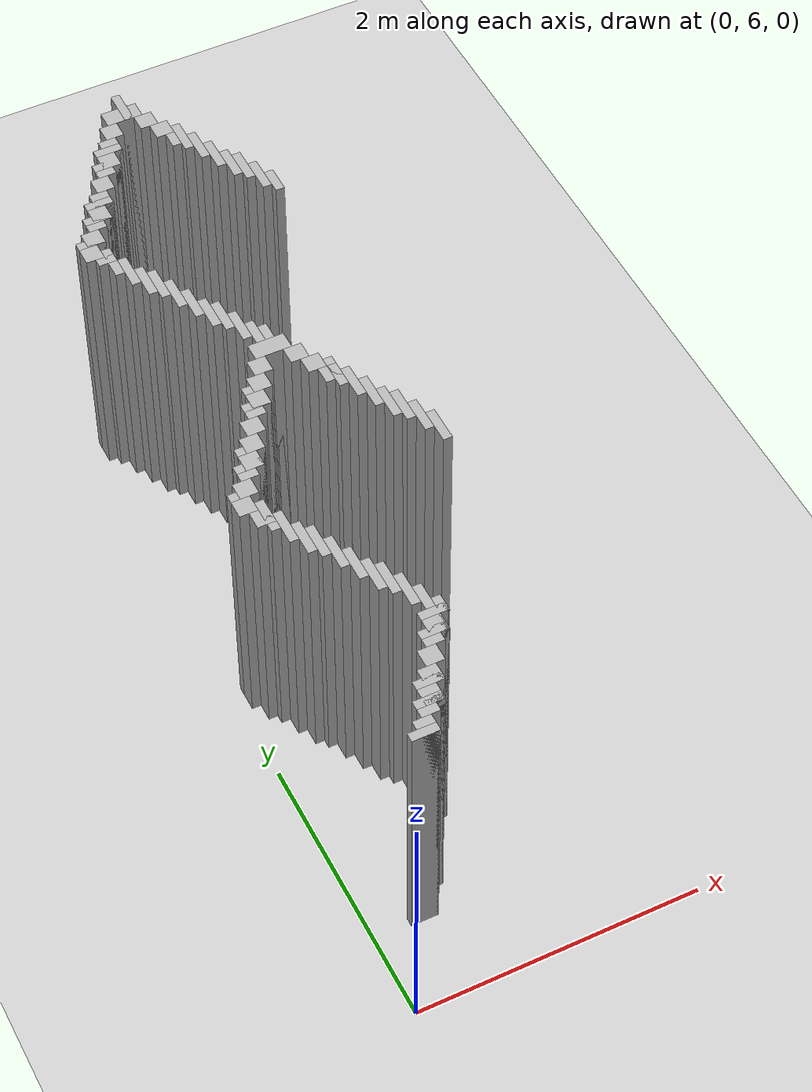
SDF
<sdf version="1.6">
 <world name="slam_world">
  <model name="ground_plane">
   <static>true</static>
   <link name="link">
    <collision name="collision">
     <geometry><plane><normal>0 0 1</normal><size>100 100</size></plane></geometry>
    </collision>
    <visual name="visual">
     <geometry><plane><normal>0 0 1</normal><size>100 100</size></plane></geometry>
     <material>
      <ambient>0.8 0.8 0.8 1</ambient>
      <diffuse>0.8 0.8 0.8 1</diffuse>
      <specular>0.8 0.8 0.8 1</specular>
     </material>
    </visual>
   </link>
  </model>
  <model name="wall_1153">
   <static>true</static>
   <pose>0.8617021276595744 12.25531914893617 1.0 0 0 0</pose>
   <link name="link">
    <collision name="collision">
     <geometry><box><size>0.06382978723404255 0.2553191489361702 2.0</size></box></geometry>
    </collision>
    <visual name="visual">
     <geometry><box><size>0.06382978723404255 0.2553191489361702 2.0</size></box></geometry>
     <material><ambient>0.5 0.5 0.5 1</ambient><diffuse>0.7 0.7 0.7 1</diffuse></material>
    </visual>
   </link>
  </model>
  <model name="wall_1165">
   <static>true</static>
   <pose>0.8297872340425532 12.191489361702127 1.0 0 0 0</pose>
   <link name="link">
    <collision name="collision">
     <geometry><box><size>0.2553191489361702 0.1276595744680851 2.0</size></box></geometry>
    </collision>
    <visual name="visual">
     <geometry><box><size>0.2553191489361702 0.1276595744680851 2.0</size></box></geometry>
     <material><ambient>0.5 0.5 0.5 1</ambient><diffuse>0.7 0.7 0.7 1</diffuse></material>
    </visual>
   </link>
  </model>
  <model name="wall_1178">
   <static>true</static>
   <pose>0.702127659574468 12.063829787234042 1.0 0 0 0</pose>
   <link name="link">
    <collision name="collision">
     <geometry><box><size>0.1276595744680851 0.1276595744680851 2.0</size></box></geometry>
    </collision>
    <visual name="visual">
     <geometry><box><size>0.1276595744680851 0.1276595744680851 2.0</size></box></geometry>
     <material><ambient>0.5 0.5 0.5 1</ambient><diffuse>0.7 0.7 0.7 1</diffuse></material>
    </visual>
   </link>
  </model>
  <model name="wall_1179">
   <static>true</static>
   <pose>0.9574468085106382 12.063829787234042 1.0 0 0 0</pose>
   <link name="link">
    <collision name="collision">
     <geometry><box><size>0.1276595744680851 0.1276595744680851 2.0</size></box></geometry>
    </collision>
    <visual name="visual">
     <geometry><box><size>0.1276595744680851 0.1276595744680851 2.0</size></box></geometry>
     <material><ambient>0.5 0.5 0.5 1</ambient><diffuse>0.7 0.7 0.7 1</diffuse></material>
    </visual>
   </link>
  </model>
  <model name="wall_1187">
   <static>true</static>
   <pose>0.6382978723404255 11.936170212765957 1.0 0 0 0</pose>
   <link name="link">
    <collision name="collision">
     <geometry><box><size>0.1276595744680851 0.1276595744680851 2.0</size></box></geometry>
    </collision>
    <visual name="visual">
     <geometry><box><size>0.1276595744680851 0.1276595744680851 2.0</size></box></geometry>
     <material><ambient>0.5 0.5 0.5 1</ambient><diffuse>0.7 0.7 0.7 1</diffuse></material>
    </visual>
   </link>
  </model>
  <model name="wall_1188">
   <static>true</static>
   <pose>1.0212765957446808 11.936170212765957 1.0 0 0 0</pose>
   <link name="link">
    <collision name="collision">
     <geometry><box><size>0.1276595744680851 0.1276595744680851 2.0</size></box></geometry>
    </collision>
    <visual name="visual">
     <geometry><box><size>0.1276595744680851 0.1276595744680851 2.0</size></box></geometry>
     <material><ambient>0.5 0.5 0.5 1</ambient><diffuse>0.7 0.7 0.7 1</diffuse></material>
    </visual>
   </link>
  </model>
  <model name="wall_1196">
   <static>true</static>
   <pose>0.6063829787234042 11.904255319148936 1.0 0 0 0</pose>
   <link name="link">
    <collision name="collision">
     <geometry><box><size>0.19148936170212766 0.06382978723404255 2.0</size></box></geometry>
    </collision>
    <visual name="visual">
     <geometry><box><size>0.19148936170212766 0.06382978723404255 2.0</size></box></geometry>
     <material><ambient>0.5 0.5 0.5 1</ambient><diffuse>0.7 0.7 0.7 1</diffuse></material>
    </visual>
   </link>
  </model>
  <model name="wall_1197">
   <static>true</static>
   <pose>1.1170212765957446 11.808510638297872 1.0 0 0 0</pose>
   <link name="link">
    <collision name="collision">
     <geometry><box><size>0.06382978723404255 0.2553191489361702 2.0</size></box></geometry>
    </collision>
    <visual name="visual">
     <geometry><box><size>0.06382978723404255 0.2553191489361702 2.0</size></box></geometry>
     <material><ambient>0.5 0.5 0.5 1</ambient><diffuse>0.7 0.7 0.7 1</diffuse></material>
    </visual>
   </link>
  </model>
  <model name="wall_1205">
   <static>true</static>
   <pose>0.5744680851063829 11.808510638297872 1.0 0 0 0</pose>
   <link name="link">
    <collision name="collision">
     <geometry><box><size>0.1276595744680851 0.1276595744680851 2.0</size></box></geometry>
    </collision>
    <visual name="visual">
     <geometry><box><size>0.1276595744680851 0.1276595744680851 2.0</size></box></geometry>
     <material><ambient>0.5 0.5 0.5 1</ambient><diffuse>0.7 0.7 0.7 1</diffuse></material>
    </visual>
   </link>
  </model>
  <model name="wall_1206">
   <static>true</static>
   <pose>1.0851063829787233 11.808510638297872 1.0 0 0 0</pose>
   <link name="link">
    <collision name="collision">
     <geometry><box><size>0.1276595744680851 0.1276595744680851 2.0</size></box></geometry>
    </collision>
    <visual name="visual">
     <geometry><box><size>0.1276595744680851 0.1276595744680851 2.0</size></box></geometry>
     <material><ambient>0.5 0.5 0.5 1</ambient><diffuse>0.7 0.7 0.7 1</diffuse></material>
    </visual>
   </link>
  </model>
  <model name="wall_1210">
   <static>true</static>
   <pose>0.5425531914893617 11.77659574468085 1.0 0 0 0</pose>
   <link name="link">
    <collision name="collision">
     <geometry><box><size>0.19148936170212766 0.06382978723404255 2.0</size></box></geometry>
    </collision>
    <visual name="visual">
     <geometry><box><size>0.19148936170212766 0.06382978723404255 2.0</size></box></geometry>
     <material><ambient>0.5 0.5 0.5 1</ambient><diffuse>0.7 0.7 0.7 1</diffuse></material>
    </visual>
   </link>
  </model>
  <model name="wall_1211">
   <static>true</static>
   <pose>1.180851063829787 11.680851063829786 1.0 0 0 0</pose>
   <link name="link">
    <collision name="collision">
     <geometry><box><size>0.06382978723404255 0.2553191489361702 2.0</size></box></geometry>
    </collision>
    <visual name="visual">
     <geometry><box><size>0.06382978723404255 0.2553191489361702 2.0</size></box></geometry>
     <material><ambient>0.5 0.5 0.5 1</ambient><diffuse>0.7 0.7 0.7 1</diffuse></material>
    </visual>
   </link>
  </model>
  <model name="wall_1219">
   <static>true</static>
   <pose>0.5106382978723404 11.712765957446807 1.0 0 0 0</pose>
   <link name="link">
    <collision name="collision">
     <geometry><box><size>0.1276595744680851 0.06382978723404255 2.0</size></box></geometry>
    </collision>
    <visual name="visual">
     <geometry><box><size>0.1276595744680851 0.06382978723404255 2.0</size></box></geometry>
     <material><ambient>0.5 0.5 0.5 1</ambient><diffuse>0.7 0.7 0.7 1</diffuse></material>
    </visual>
   </link>
  </model>
  <model name="wall_1223">
   <static>true</static>
   <pose>0.44680851063829785 11.617021276595743 1.0 0 0 0</pose>
   <link name="link">
    <collision name="collision">
     <geometry><box><size>0.1276595744680851 0.1276595744680851 2.0</size></box></geometry>
    </collision>
    <visual name="visual">
     <geometry><box><size>0.1276595744680851 0.1276595744680851 2.0</size></box></geometry>
     <material><ambient>0.5 0.5 0.5 1</ambient><diffuse>0.7 0.7 0.7 1</diffuse></material>
    </visual>
   </link>
  </model>
  <model name="wall_1224">
   <static>true</static>
   <pose>1.2446808510638296 11.553191489361701 1.0 0 0 0</pose>
   <link name="link">
    <collision name="collision">
     <geometry><box><size>0.06382978723404255 0.2553191489361702 2.0</size></box></geometry>
    </collision>
    <visual name="visual">
     <geometry><box><size>0.06382978723404255 0.2553191489361702 2.0</size></box></geometry>
     <material><ambient>0.5 0.5 0.5 1</ambient><diffuse>0.7 0.7 0.7 1</diffuse></material>
    </visual>
   </link>
  </model>
  <model name="wall_1232">
   <static>true</static>
   <pose>0.3829787234042553 11.489361702127658 1.0 0 0 0</pose>
   <link name="link">
    <collision name="collision">
     <geometry><box><size>0.1276595744680851 0.1276595744680851 2.0</size></box></geometry>
    </collision>
    <visual name="visual">
     <geometry><box><size>0.1276595744680851 0.1276595744680851 2.0</size></box></geometry>
     <material><ambient>0.5 0.5 0.5 1</ambient><diffuse>0.7 0.7 0.7 1</diffuse></material>
    </visual>
   </link>
  </model>
  <model name="wall_1233">
   <static>true</static>
   <pose>1.3085106382978722 11.425531914893616 1.0 0 0 0</pose>
   <link name="link">
    <collision name="collision">
     <geometry><box><size>0.06382978723404255 0.2553191489361702 2.0</size></box></geometry>
    </collision>
    <visual name="visual">
     <geometry><box><size>0.06382978723404255 0.2553191489361702 2.0</size></box></geometry>
     <material><ambient>0.5 0.5 0.5 1</ambient><diffuse>0.7 0.7 0.7 1</diffuse></material>
    </visual>
   </link>
  </model>
  <model name="wall_1241">
   <static>true</static>
   <pose>0.351063829787234 11.457446808510637 1.0 0 0 0</pose>
   <link name="link">
    <collision name="collision">
     <geometry><box><size>0.19148936170212766 0.06382978723404255 2.0</size></box></geometry>
    </collision>
    <visual name="visual">
     <geometry><box><size>0.19148936170212766 0.06382978723404255 2.0</size></box></geometry>
     <material><ambient>0.5 0.5 0.5 1</ambient><diffuse>0.7 0.7 0.7 1</diffuse></material>
    </visual>
   </link>
  </model>
  <model name="wall_1242">
   <static>true</static>
   <pose>1.3723404255319147 11.361702127659573 1.0 0 0 0</pose>
   <link name="link">
    <collision name="collision">
     <geometry><box><size>0.06382978723404255 0.2553191489361702 2.0</size></box></geometry>
    </collision>
    <visual name="visual">
     <geometry><box><size>0.06382978723404255 0.2553191489361702 2.0</size></box></geometry>
     <material><ambient>0.5 0.5 0.5 1</ambient><diffuse>0.7 0.7 0.7 1</diffuse></material>
    </visual>
   </link>
  </model>
  <model name="wall_1250">
   <static>true</static>
   <pose>0.3191489361702127 11.361702127659573 1.0 0 0 0</pose>
   <link name="link">
    <collision name="collision">
     <geometry><box><size>0.1276595744680851 0.1276595744680851 2.0</size></box></geometry>
    </collision>
    <visual name="visual">
     <geometry><box><size>0.1276595744680851 0.1276595744680851 2.0</size></box></geometry>
     <material><ambient>0.5 0.5 0.5 1</ambient><diffuse>0.7 0.7 0.7 1</diffuse></material>
    </visual>
   </link>
  </model>
  <model name="wall_1254">
   <static>true</static>
   <pose>0.28723404255319146 11.329787234042552 1.0 0 0 0</pose>
   <link name="link">
    <collision name="collision">
     <geometry><box><size>0.19148936170212766 0.06382978723404255 2.0</size></box></geometry>
    </collision>
    <visual name="visual">
     <geometry><box><size>0.19148936170212766 0.06382978723404255 2.0</size></box></geometry>
     <material><ambient>0.5 0.5 0.5 1</ambient><diffuse>0.7 0.7 0.7 1</diffuse></material>
    </visual>
   </link>
  </model>
  <model name="wall_1255">
   <static>true</static>
   <pose>1.4361702127659572 11.234042553191488 1.0 0 0 0</pose>
   <link name="link">
    <collision name="collision">
     <geometry><box><size>0.06382978723404255 0.2553191489361702 2.0</size></box></geometry>
    </collision>
    <visual name="visual">
     <geometry><box><size>0.06382978723404255 0.2553191489361702 2.0</size></box></geometry>
     <material><ambient>0.5 0.5 0.5 1</ambient><diffuse>0.7 0.7 0.7 1</diffuse></material>
    </visual>
   </link>
  </model>
  <model name="wall_1263">
   <static>true</static>
   <pose>0.2553191489361702 11.26595744680851 1.0 0 0 0</pose>
   <link name="link">
    <collision name="collision">
     <geometry><box><size>0.1276595744680851 0.06382978723404255 2.0</size></box></geometry>
    </collision>
    <visual name="visual">
     <geometry><box><size>0.1276595744680851 0.06382978723404255 2.0</size></box></geometry>
     <material><ambient>0.5 0.5 0.5 1</ambient><diffuse>0.7 0.7 0.7 1</diffuse></material>
    </visual>
   </link>
  </model>
  <model name="wall_1267">
   <static>true</static>
   <pose>0.19148936170212766 11.170212765957446 1.0 0 0 0</pose>
   <link name="link">
    <collision name="collision">
     <geometry><box><size>0.1276595744680851 0.1276595744680851 2.0</size></box></geometry>
    </collision>
    <visual name="visual">
     <geometry><box><size>0.1276595744680851 0.1276595744680851 2.0</size></box></geometry>
     <material><ambient>0.5 0.5 0.5 1</ambient><diffuse>0.7 0.7 0.7 1</diffuse></material>
    </visual>
   </link>
  </model>
  <model name="wall_1268">
   <static>true</static>
   <pose>1.4999999999999998 11.138297872340425 1.0 0 0 0</pose>
   <link name="link">
    <collision name="collision">
     <geometry><box><size>0.06382978723404255 0.19148936170212766 2.0</size></box></geometry>
    </collision>
    <visual name="visual">
     <geometry><box><size>0.06382978723404255 0.19148936170212766 2.0</size></box></geometry>
     <material><ambient>0.5 0.5 0.5 1</ambient><diffuse>0.7 0.7 0.7 1</diffuse></material>
    </visual>
   </link>
  </model>
  <model name="wall_1275">
   <static>true</static>
   <pose>0.15957446808510636 11.138297872340425 1.0 0 0 0</pose>
   <link name="link">
    <collision name="collision">
     <geometry><box><size>0.19148936170212766 0.06382978723404255 2.0</size></box></geometry>
    </collision>
    <visual name="visual">
     <geometry><box><size>0.19148936170212766 0.06382978723404255 2.0</size></box></geometry>
     <material><ambient>0.5 0.5 0.5 1</ambient><diffuse>0.7 0.7 0.7 1</diffuse></material>
    </visual>
   </link>
  </model>
  <model name="wall_1283">
   <static>true</static>
   <pose>0.1276595744680851 11.042553191489361 1.0 0 0 0</pose>
   <link name="link">
    <collision name="collision">
     <geometry><box><size>0.1276595744680851 0.1276595744680851 2.0</size></box></geometry>
    </collision>
    <visual name="visual">
     <geometry><box><size>0.1276595744680851 0.1276595744680851 2.0</size></box></geometry>
     <material><ambient>0.5 0.5 0.5 1</ambient><diffuse>0.7 0.7 0.7 1</diffuse></material>
    </visual>
   </link>
  </model>
  <model name="wall_1288">
   <static>true</static>
   <pose>0.22340425531914893 10.914893617021276 1.0 0 0 0</pose>
   <link name="link">
    <collision name="collision">
     <geometry><box><size>0.06382978723404255 0.2553191489361702 2.0</size></box></geometry>
    </collision>
    <visual name="visual">
     <geometry><box><size>0.06382978723404255 0.2553191489361702 2.0</size></box></geometry>
     <material><ambient>0.5 0.5 0.5 1</ambient><diffuse>0.7 0.7 0.7 1</diffuse></material>
    </visual>
   </link>
  </model>
  <model name="wall_1293">
   <static>true</static>
   <pose>0.19148936170212766 10.946808510638297 1.0 0 0 0</pose>
   <link name="link">
    <collision name="collision">
     <geometry><box><size>0.1276595744680851 0.06382978723404255 2.0</size></box></geometry>
    </collision>
    <visual name="visual">
     <geometry><box><size>0.1276595744680851 0.06382978723404255 2.0</size></box></geometry>
     <material><ambient>0.5 0.5 0.5 1</ambient><diffuse>0.7 0.7 0.7 1</diffuse></material>
    </visual>
   </link>
  </model>
  <model name="wall_1298">
   <static>true</static>
   <pose>0.28723404255319146 10.787234042553191 1.0 0 0 0</pose>
   <link name="link">
    <collision name="collision">
     <geometry><box><size>0.06382978723404255 0.2553191489361702 2.0</size></box></geometry>
    </collision>
    <visual name="visual">
     <geometry><box><size>0.06382978723404255 0.2553191489361702 2.0</size></box></geometry>
     <material><ambient>0.5 0.5 0.5 1</ambient><diffuse>0.7 0.7 0.7 1</diffuse></material>
    </visual>
   </link>
  </model>
  <model name="wall_1303">
   <static>true</static>
   <pose>0.351063829787234 10.659574468085106 1.0 0 0 0</pose>
   <link name="link">
    <collision name="collision">
     <geometry><box><size>0.06382978723404255 0.2553191489361702 2.0</size></box></geometry>
    </collision>
    <visual name="visual">
     <geometry><box><size>0.06382978723404255 0.2553191489361702 2.0</size></box></geometry>
     <material><ambient>0.5 0.5 0.5 1</ambient><diffuse>0.7 0.7 0.7 1</diffuse></material>
    </visual>
   </link>
  </model>
  <model name="wall_1308">
   <static>true</static>
   <pose>0.4148936170212766 10.595744680851062 1.0 0 0 0</pose>
   <link name="link">
    <collision name="collision">
     <geometry><box><size>0.06382978723404255 0.2553191489361702 2.0</size></box></geometry>
    </collision>
    <visual name="visual">
     <geometry><box><size>0.06382978723404255 0.2553191489361702 2.0</size></box></geometry>
     <material><ambient>0.5 0.5 0.5 1</ambient><diffuse>0.7 0.7 0.7 1</diffuse></material>
    </visual>
   </link>
  </model>
  <model name="wall_1315">
   <static>true</static>
   <pose>0.4787234042553191 10.468085106382977 1.0 0 0 0</pose>
   <link name="link">
    <collision name="collision">
     <geometry><box><size>0.06382978723404255 0.2553191489361702 2.0</size></box></geometry>
    </collision>
    <visual name="visual">
     <geometry><box><size>0.06382978723404255 0.2553191489361702 2.0</size></box></geometry>
     <material><ambient>0.5 0.5 0.5 1</ambient><diffuse>0.7 0.7 0.7 1</diffuse></material>
    </visual>
   </link>
  </model>
  <model name="wall_1322">
   <static>true</static>
   <pose>0.5425531914893617 10.340425531914892 1.0 0 0 0</pose>
   <link name="link">
    <collision name="collision">
     <geometry><box><size>0.06382978723404255 0.2553191489361702 2.0</size></box></geometry>
    </collision>
    <visual name="visual">
     <geometry><box><size>0.06382978723404255 0.2553191489361702 2.0</size></box></geometry>
     <material><ambient>0.5 0.5 0.5 1</ambient><diffuse>0.7 0.7 0.7 1</diffuse></material>
    </visual>
   </link>
  </model>
  <model name="wall_1327">
   <static>true</static>
   <pose>0.6063829787234042 10.212765957446807 1.0 0 0 0</pose>
   <link name="link">
    <collision name="collision">
     <geometry><box><size>0.06382978723404255 0.2553191489361702 2.0</size></box></geometry>
    </collision>
    <visual name="visual">
     <geometry><box><size>0.06382978723404255 0.2553191489361702 2.0</size></box></geometry>
     <material><ambient>0.5 0.5 0.5 1</ambient><diffuse>0.7 0.7 0.7 1</diffuse></material>
    </visual>
   </link>
  </model>
  <model name="wall_1332">
   <static>true</static>
   <pose>0.6702127659574467 10.148936170212766 1.0 0 0 0</pose>
   <link name="link">
    <collision name="collision">
     <geometry><box><size>0.06382978723404255 0.2553191489361702 2.0</size></box></geometry>
    </collision>
    <visual name="visual">
     <geometry><box><size>0.06382978723404255 0.2553191489361702 2.0</size></box></geometry>
     <material><ambient>0.5 0.5 0.5 1</ambient><diffuse>0.7 0.7 0.7 1</diffuse></material>
    </visual>
   </link>
  </model>
  <model name="wall_1339">
   <static>true</static>
   <pose>0.7340425531914893 10.02127659574468 1.0 0 0 0</pose>
   <link name="link">
    <collision name="collision">
     <geometry><box><size>0.06382978723404255 0.2553191489361702 2.0</size></box></geometry>
    </collision>
    <visual name="visual">
     <geometry><box><size>0.06382978723404255 0.2553191489361702 2.0</size></box></geometry>
     <material><ambient>0.5 0.5 0.5 1</ambient><diffuse>0.7 0.7 0.7 1</diffuse></material>
    </visual>
   </link>
  </model>
  <model name="wall_1346">
   <static>true</static>
   <pose>0.7978723404255319 9.861702127659573 1.0 0 0 0</pose>
   <link name="link">
    <collision name="collision">
     <geometry><box><size>0.06382978723404255 0.3191489361702127 2.0</size></box></geometry>
    </collision>
    <visual name="visual">
     <geometry><box><size>0.06382978723404255 0.3191489361702127 2.0</size></box></geometry>
     <material><ambient>0.5 0.5 0.5 1</ambient><diffuse>0.7 0.7 0.7 1</diffuse></material>
    </visual>
   </link>
  </model>
  <model name="wall_1350">
   <static>true</static>
   <pose>0.8617021276595744 9.829787234042552 1.0 0 0 0</pose>
   <link name="link">
    <collision name="collision">
     <geometry><box><size>0.06382978723404255 0.2553191489361702 2.0</size></box></geometry>
    </collision>
    <visual name="visual">
     <geometry><box><size>0.06382978723404255 0.2553191489361702 2.0</size></box></geometry>
     <material><ambient>0.5 0.5 0.5 1</ambient><diffuse>0.7 0.7 0.7 1</diffuse></material>
    </visual>
   </link>
  </model>
  <model name="wall_1362">
   <static>true</static>
   <pose>0.8297872340425532 9.76595744680851 1.0 0 0 0</pose>
   <link name="link">
    <collision name="collision">
     <geometry><box><size>0.2553191489361702 0.1276595744680851 2.0</size></box></geometry>
    </collision>
    <visual name="visual">
     <geometry><box><size>0.2553191489361702 0.1276595744680851 2.0</size></box></geometry>
     <material><ambient>0.5 0.5 0.5 1</ambient><diffuse>0.7 0.7 0.7 1</diffuse></material>
    </visual>
   </link>
  </model>
  <model name="wall_1377">
   <static>true</static>
   <pose>0.702127659574468 9.638297872340425 1.0 0 0 0</pose>
   <link name="link">
    <collision name="collision">
     <geometry><box><size>0.1276595744680851 0.1276595744680851 2.0</size></box></geometry>
    </collision>
    <visual name="visual">
     <geometry><box><size>0.1276595744680851 0.1276595744680851 2.0</size></box></geometry>
     <material><ambient>0.5 0.5 0.5 1</ambient><diffuse>0.7 0.7 0.7 1</diffuse></material>
    </visual>
   </link>
  </model>
  <model name="wall_1378">
   <static>true</static>
   <pose>0.9574468085106382 9.638297872340425 1.0 0 0 0</pose>
   <link name="link">
    <collision name="collision">
     <geometry><box><size>0.1276595744680851 0.1276595744680851 2.0</size></box></geometry>
    </collision>
    <visual name="visual">
     <geometry><box><size>0.1276595744680851 0.1276595744680851 2.0</size></box></geometry>
     <material><ambient>0.5 0.5 0.5 1</ambient><diffuse>0.7 0.7 0.7 1</diffuse></material>
    </visual>
   </link>
  </model>
  <model name="wall_1388">
   <static>true</static>
   <pose>0.6382978723404255 9.51063829787234 1.0 0 0 0</pose>
   <link name="link">
    <collision name="collision">
     <geometry><box><size>0.1276595744680851 0.1276595744680851 2.0</size></box></geometry>
    </collision>
    <visual name="visual">
     <geometry><box><size>0.1276595744680851 0.1276595744680851 2.0</size></box></geometry>
     <material><ambient>0.5 0.5 0.5 1</ambient><diffuse>0.7 0.7 0.7 1</diffuse></material>
    </visual>
   </link>
  </model>
  <model name="wall_1389">
   <static>true</static>
   <pose>1.0212765957446808 9.51063829787234 1.0 0 0 0</pose>
   <link name="link">
    <collision name="collision">
     <geometry><box><size>0.1276595744680851 0.1276595744680851 2.0</size></box></geometry>
    </collision>
    <visual name="visual">
     <geometry><box><size>0.1276595744680851 0.1276595744680851 2.0</size></box></geometry>
     <material><ambient>0.5 0.5 0.5 1</ambient><diffuse>0.7 0.7 0.7 1</diffuse></material>
    </visual>
   </link>
  </model>
  <model name="wall_1399">
   <static>true</static>
   <pose>0.6063829787234042 9.478723404255318 1.0 0 0 0</pose>
   <link name="link">
    <collision name="collision">
     <geometry><box><size>0.19148936170212766 0.06382978723404255 2.0</size></box></geometry>
    </collision>
    <visual name="visual">
     <geometry><box><size>0.19148936170212766 0.06382978723404255 2.0</size></box></geometry>
     <material><ambient>0.5 0.5 0.5 1</ambient><diffuse>0.7 0.7 0.7 1</diffuse></material>
    </visual>
   </link>
  </model>
  <model name="wall_1400">
   <static>true</static>
   <pose>1.1170212765957446 9.382978723404255 1.0 0 0 0</pose>
   <link name="link">
    <collision name="collision">
     <geometry><box><size>0.06382978723404255 0.2553191489361702 2.0</size></box></geometry>
    </collision>
    <visual name="visual">
     <geometry><box><size>0.06382978723404255 0.2553191489361702 2.0</size></box></geometry>
     <material><ambient>0.5 0.5 0.5 1</ambient><diffuse>0.7 0.7 0.7 1</diffuse></material>
    </visual>
   </link>
  </model>
  <model name="wall_1410">
   <static>true</static>
   <pose>0.5744680851063829 9.382978723404255 1.0 0 0 0</pose>
   <link name="link">
    <collision name="collision">
     <geometry><box><size>0.1276595744680851 0.1276595744680851 2.0</size></box></geometry>
    </collision>
    <visual name="visual">
     <geometry><box><size>0.1276595744680851 0.1276595744680851 2.0</size></box></geometry>
     <material><ambient>0.5 0.5 0.5 1</ambient><diffuse>0.7 0.7 0.7 1</diffuse></material>
    </visual>
   </link>
  </model>
  <model name="wall_1411">
   <static>true</static>
   <pose>1.0851063829787233 9.382978723404255 1.0 0 0 0</pose>
   <link name="link">
    <collision name="collision">
     <geometry><box><size>0.1276595744680851 0.1276595744680851 2.0</size></box></geometry>
    </collision>
    <visual name="visual">
     <geometry><box><size>0.1276595744680851 0.1276595744680851 2.0</size></box></geometry>
     <material><ambient>0.5 0.5 0.5 1</ambient><diffuse>0.7 0.7 0.7 1</diffuse></material>
    </visual>
   </link>
  </model>
  <model name="wall_1418">
   <static>true</static>
   <pose>0.5425531914893617 9.351063829787233 1.0 0 0 0</pose>
   <link name="link">
    <collision name="collision">
     <geometry><box><size>0.19148936170212766 0.06382978723404255 2.0</size></box></geometry>
    </collision>
    <visual name="visual">
     <geometry><box><size>0.19148936170212766 0.06382978723404255 2.0</size></box></geometry>
     <material><ambient>0.5 0.5 0.5 1</ambient><diffuse>0.7 0.7 0.7 1</diffuse></material>
    </visual>
   </link>
  </model>
  <model name="wall_1419">
   <static>true</static>
   <pose>1.180851063829787 9.25531914893617 1.0 0 0 0</pose>
   <link name="link">
    <collision name="collision">
     <geometry><box><size>0.06382978723404255 0.2553191489361702 2.0</size></box></geometry>
    </collision>
    <visual name="visual">
     <geometry><box><size>0.06382978723404255 0.2553191489361702 2.0</size></box></geometry>
     <material><ambient>0.5 0.5 0.5 1</ambient><diffuse>0.7 0.7 0.7 1</diffuse></material>
    </visual>
   </link>
  </model>
  <model name="wall_1429">
   <static>true</static>
   <pose>0.5106382978723404 9.287234042553191 1.0 0 0 0</pose>
   <link name="link">
    <collision name="collision">
     <geometry><box><size>0.1276595744680851 0.06382978723404255 2.0</size></box></geometry>
    </collision>
    <visual name="visual">
     <geometry><box><size>0.1276595744680851 0.06382978723404255 2.0</size></box></geometry>
     <material><ambient>0.5 0.5 0.5 1</ambient><diffuse>0.7 0.7 0.7 1</diffuse></material>
    </visual>
   </link>
  </model>
  <model name="wall_1435">
   <static>true</static>
   <pose>0.44680851063829785 9.191489361702127 1.0 0 0 0</pose>
   <link name="link">
    <collision name="collision">
     <geometry><box><size>0.1276595744680851 0.1276595744680851 2.0</size></box></geometry>
    </collision>
    <visual name="visual">
     <geometry><box><size>0.1276595744680851 0.1276595744680851 2.0</size></box></geometry>
     <material><ambient>0.5 0.5 0.5 1</ambient><diffuse>0.7 0.7 0.7 1</diffuse></material>
    </visual>
   </link>
  </model>
  <model name="wall_1436">
   <static>true</static>
   <pose>1.2446808510638296 9.127659574468085 1.0 0 0 0</pose>
   <link name="link">
    <collision name="collision">
     <geometry><box><size>0.06382978723404255 0.2553191489361702 2.0</size></box></geometry>
    </collision>
    <visual name="visual">
     <geometry><box><size>0.06382978723404255 0.2553191489361702 2.0</size></box></geometry>
     <material><ambient>0.5 0.5 0.5 1</ambient><diffuse>0.7 0.7 0.7 1</diffuse></material>
    </visual>
   </link>
  </model>
  <model name="wall_1446">
   <static>true</static>
   <pose>0.3829787234042553 9.063829787234042 1.0 0 0 0</pose>
   <link name="link">
    <collision name="collision">
     <geometry><box><size>0.1276595744680851 0.1276595744680851 2.0</size></box></geometry>
    </collision>
    <visual name="visual">
     <geometry><box><size>0.1276595744680851 0.1276595744680851 2.0</size></box></geometry>
     <material><ambient>0.5 0.5 0.5 1</ambient><diffuse>0.7 0.7 0.7 1</diffuse></material>
    </visual>
   </link>
  </model>
  <model name="wall_1447">
   <static>true</static>
   <pose>1.3085106382978722 9.0 1.0 0 0 0</pose>
   <link name="link">
    <collision name="collision">
     <geometry><box><size>0.06382978723404255 0.2553191489361702 2.0</size></box></geometry>
    </collision>
    <visual name="visual">
     <geometry><box><size>0.06382978723404255 0.2553191489361702 2.0</size></box></geometry>
     <material><ambient>0.5 0.5 0.5 1</ambient><diffuse>0.7 0.7 0.7 1</diffuse></material>
    </visual>
   </link>
  </model>
  <model name="wall_1457">
   <static>true</static>
   <pose>0.351063829787234 9.03191489361702 1.0 0 0 0</pose>
   <link name="link">
    <collision name="collision">
     <geometry><box><size>0.19148936170212766 0.06382978723404255 2.0</size></box></geometry>
    </collision>
    <visual name="visual">
     <geometry><box><size>0.19148936170212766 0.06382978723404255 2.0</size></box></geometry>
     <material><ambient>0.5 0.5 0.5 1</ambient><diffuse>0.7 0.7 0.7 1</diffuse></material>
    </visual>
   </link>
  </model>
  <model name="wall_1458">
   <static>true</static>
   <pose>1.3723404255319147 8.936170212765957 1.0 0 0 0</pose>
   <link name="link">
    <collision name="collision">
     <geometry><box><size>0.06382978723404255 0.2553191489361702 2.0</size></box></geometry>
    </collision>
    <visual name="visual">
     <geometry><box><size>0.06382978723404255 0.2553191489361702 2.0</size></box></geometry>
     <material><ambient>0.5 0.5 0.5 1</ambient><diffuse>0.7 0.7 0.7 1</diffuse></material>
    </visual>
   </link>
  </model>
  <model name="wall_1468">
   <static>true</static>
   <pose>0.3191489361702127 8.936170212765957 1.0 0 0 0</pose>
   <link name="link">
    <collision name="collision">
     <geometry><box><size>0.1276595744680851 0.1276595744680851 2.0</size></box></geometry>
    </collision>
    <visual name="visual">
     <geometry><box><size>0.1276595744680851 0.1276595744680851 2.0</size></box></geometry>
     <material><ambient>0.5 0.5 0.5 1</ambient><diffuse>0.7 0.7 0.7 1</diffuse></material>
    </visual>
   </link>
  </model>
  <model name="wall_1474">
   <static>true</static>
   <pose>0.28723404255319146 8.904255319148936 1.0 0 0 0</pose>
   <link name="link">
    <collision name="collision">
     <geometry><box><size>0.19148936170212766 0.06382978723404255 2.0</size></box></geometry>
    </collision>
    <visual name="visual">
     <geometry><box><size>0.19148936170212766 0.06382978723404255 2.0</size></box></geometry>
     <material><ambient>0.5 0.5 0.5 1</ambient><diffuse>0.7 0.7 0.7 1</diffuse></material>
    </visual>
   </link>
  </model>
  <model name="wall_1475">
   <static>true</static>
   <pose>1.4361702127659572 8.808510638297872 1.0 0 0 0</pose>
   <link name="link">
    <collision name="collision">
     <geometry><box><size>0.06382978723404255 0.2553191489361702 2.0</size></box></geometry>
    </collision>
    <visual name="visual">
     <geometry><box><size>0.06382978723404255 0.2553191489361702 2.0</size></box></geometry>
     <material><ambient>0.5 0.5 0.5 1</ambient><diffuse>0.7 0.7 0.7 1</diffuse></material>
    </visual>
   </link>
  </model>
  <model name="wall_1485">
   <static>true</static>
   <pose>0.2553191489361702 8.840425531914892 1.0 0 0 0</pose>
   <link name="link">
    <collision name="collision">
     <geometry><box><size>0.1276595744680851 0.06382978723404255 2.0</size></box></geometry>
    </collision>
    <visual name="visual">
     <geometry><box><size>0.1276595744680851 0.06382978723404255 2.0</size></box></geometry>
     <material><ambient>0.5 0.5 0.5 1</ambient><diffuse>0.7 0.7 0.7 1</diffuse></material>
    </visual>
   </link>
  </model>
  <model name="wall_1491">
   <static>true</static>
   <pose>0.19148936170212766 8.74468085106383 1.0 0 0 0</pose>
   <link name="link">
    <collision name="collision">
     <geometry><box><size>0.1276595744680851 0.1276595744680851 2.0</size></box></geometry>
    </collision>
    <visual name="visual">
     <geometry><box><size>0.1276595744680851 0.1276595744680851 2.0</size></box></geometry>
     <material><ambient>0.5 0.5 0.5 1</ambient><diffuse>0.7 0.7 0.7 1</diffuse></material>
    </visual>
   </link>
  </model>
  <model name="wall_1492">
   <static>true</static>
   <pose>1.4999999999999998 8.680851063829786 1.0 0 0 0</pose>
   <link name="link">
    <collision name="collision">
     <geometry><box><size>0.06382978723404255 0.2553191489361702 2.0</size></box></geometry>
    </collision>
    <visual name="visual">
     <geometry><box><size>0.06382978723404255 0.2553191489361702 2.0</size></box></geometry>
     <material><ambient>0.5 0.5 0.5 1</ambient><diffuse>0.7 0.7 0.7 1</diffuse></material>
    </visual>
   </link>
  </model>
  <model name="wall_1500">
   <static>true</static>
   <pose>0.15957446808510636 8.712765957446807 1.0 0 0 0</pose>
   <link name="link">
    <collision name="collision">
     <geometry><box><size>0.19148936170212766 0.06382978723404255 2.0</size></box></geometry>
    </collision>
    <visual name="visual">
     <geometry><box><size>0.19148936170212766 0.06382978723404255 2.0</size></box></geometry>
     <material><ambient>0.5 0.5 0.5 1</ambient><diffuse>0.7 0.7 0.7 1</diffuse></material>
    </visual>
   </link>
  </model>
  <model name="wall_1507">
   <static>true</static>
   <pose>0.1276595744680851 8.617021276595745 1.0 0 0 0</pose>
   <link name="link">
    <collision name="collision">
     <geometry><box><size>0.1276595744680851 0.1276595744680851 2.0</size></box></geometry>
    </collision>
    <visual name="visual">
     <geometry><box><size>0.1276595744680851 0.1276595744680851 2.0</size></box></geometry>
     <material><ambient>0.5 0.5 0.5 1</ambient><diffuse>0.7 0.7 0.7 1</diffuse></material>
    </visual>
   </link>
  </model>
  <model name="wall_1516">
   <static>true</static>
   <pose>0.22340425531914893 8.48936170212766 1.0 0 0 0</pose>
   <link name="link">
    <collision name="collision">
     <geometry><box><size>0.06382978723404255 0.2553191489361702 2.0</size></box></geometry>
    </collision>
    <visual name="visual">
     <geometry><box><size>0.06382978723404255 0.2553191489361702 2.0</size></box></geometry>
     <material><ambient>0.5 0.5 0.5 1</ambient><diffuse>0.7 0.7 0.7 1</diffuse></material>
    </visual>
   </link>
  </model>
  <model name="wall_1524">
   <static>true</static>
   <pose>0.19148936170212766 8.48936170212766 1.0 0 0 0</pose>
   <link name="link">
    <collision name="collision">
     <geometry><box><size>0.1276595744680851 0.1276595744680851 2.0</size></box></geometry>
    </collision>
    <visual name="visual">
     <geometry><box><size>0.1276595744680851 0.1276595744680851 2.0</size></box></geometry>
     <material><ambient>0.5 0.5 0.5 1</ambient><diffuse>0.7 0.7 0.7 1</diffuse></material>
    </visual>
   </link>
  </model>
  <model name="wall_1531">
   <static>true</static>
   <pose>0.28723404255319146 8.361702127659575 1.0 0 0 0</pose>
   <link name="link">
    <collision name="collision">
     <geometry><box><size>0.06382978723404255 0.2553191489361702 2.0</size></box></geometry>
    </collision>
    <visual name="visual">
     <geometry><box><size>0.06382978723404255 0.2553191489361702 2.0</size></box></geometry>
     <material><ambient>0.5 0.5 0.5 1</ambient><diffuse>0.7 0.7 0.7 1</diffuse></material>
    </visual>
   </link>
  </model>
  <model name="wall_1540">
   <static>true</static>
   <pose>0.351063829787234 8.23404255319149 1.0 0 0 0</pose>
   <link name="link">
    <collision name="collision">
     <geometry><box><size>0.06382978723404255 0.2553191489361702 2.0</size></box></geometry>
    </collision>
    <visual name="visual">
     <geometry><box><size>0.06382978723404255 0.2553191489361702 2.0</size></box></geometry>
     <material><ambient>0.5 0.5 0.5 1</ambient><diffuse>0.7 0.7 0.7 1</diffuse></material>
    </visual>
   </link>
  </model>
  <model name="wall_1548">
   <static>true</static>
   <pose>0.4148936170212766 8.170212765957446 1.0 0 0 0</pose>
   <link name="link">
    <collision name="collision">
     <geometry><box><size>0.06382978723404255 0.2553191489361702 2.0</size></box></geometry>
    </collision>
    <visual name="visual">
     <geometry><box><size>0.06382978723404255 0.2553191489361702 2.0</size></box></geometry>
     <material><ambient>0.5 0.5 0.5 1</ambient><diffuse>0.7 0.7 0.7 1</diffuse></material>
    </visual>
   </link>
  </model>
  <model name="wall_1557">
   <static>true</static>
   <pose>0.4787234042553191 8.042553191489361 1.0 0 0 0</pose>
   <link name="link">
    <collision name="collision">
     <geometry><box><size>0.06382978723404255 0.2553191489361702 2.0</size></box></geometry>
    </collision>
    <visual name="visual">
     <geometry><box><size>0.06382978723404255 0.2553191489361702 2.0</size></box></geometry>
     <material><ambient>0.5 0.5 0.5 1</ambient><diffuse>0.7 0.7 0.7 1</diffuse></material>
    </visual>
   </link>
  </model>
  <model name="wall_1566">
   <static>true</static>
   <pose>0.5425531914893617 7.914893617021276 1.0 0 0 0</pose>
   <link name="link">
    <collision name="collision">
     <geometry><box><size>0.06382978723404255 0.2553191489361702 2.0</size></box></geometry>
    </collision>
    <visual name="visual">
     <geometry><box><size>0.06382978723404255 0.2553191489361702 2.0</size></box></geometry>
     <material><ambient>0.5 0.5 0.5 1</ambient><diffuse>0.7 0.7 0.7 1</diffuse></material>
    </visual>
   </link>
  </model>
  <model name="wall_1574">
   <static>true</static>
   <pose>0.6063829787234042 7.787234042553191 1.0 0 0 0</pose>
   <link name="link">
    <collision name="collision">
     <geometry><box><size>0.06382978723404255 0.2553191489361702 2.0</size></box></geometry>
    </collision>
    <visual name="visual">
     <geometry><box><size>0.06382978723404255 0.2553191489361702 2.0</size></box></geometry>
     <material><ambient>0.5 0.5 0.5 1</ambient><diffuse>0.7 0.7 0.7 1</diffuse></material>
    </visual>
   </link>
  </model>
  <model name="wall_1582">
   <static>true</static>
   <pose>0.6702127659574467 7.723404255319148 1.0 0 0 0</pose>
   <link name="link">
    <collision name="collision">
     <geometry><box><size>0.06382978723404255 0.2553191489361702 2.0</size></box></geometry>
    </collision>
    <visual name="visual">
     <geometry><box><size>0.06382978723404255 0.2553191489361702 2.0</size></box></geometry>
     <material><ambient>0.5 0.5 0.5 1</ambient><diffuse>0.7 0.7 0.7 1</diffuse></material>
    </visual>
   </link>
  </model>
  <model name="wall_1591">
   <static>true</static>
   <pose>0.7340425531914893 7.595744680851063 1.0 0 0 0</pose>
   <link name="link">
    <collision name="collision">
     <geometry><box><size>0.06382978723404255 0.2553191489361702 2.0</size></box></geometry>
    </collision>
    <visual name="visual">
     <geometry><box><size>0.06382978723404255 0.2553191489361702 2.0</size></box></geometry>
     <material><ambient>0.5 0.5 0.5 1</ambient><diffuse>0.7 0.7 0.7 1</diffuse></material>
    </visual>
   </link>
  </model>
  <model name="wall_1600">
   <static>true</static>
   <pose>0.7978723404255319 7.404255319148936 1.0 0 0 0</pose>
   <link name="link">
    <collision name="collision">
     <geometry><box><size>0.06382978723404255 0.3829787234042553 2.0</size></box></geometry>
    </collision>
    <visual name="visual">
     <geometry><box><size>0.06382978723404255 0.3829787234042553 2.0</size></box></geometry>
     <material><ambient>0.5 0.5 0.5 1</ambient><diffuse>0.7 0.7 0.7 1</diffuse></material>
    </visual>
   </link>
  </model>
  <model name="wall_1610">
   <static>true</static>
   <pose>0.8617021276595744 7.404255319148936 1.0 0 0 0</pose>
   <link name="link">
    <collision name="collision">
     <geometry><box><size>0.06382978723404255 0.1276595744680851 2.0</size></box></geometry>
    </collision>
    <visual name="visual">
     <geometry><box><size>0.06382978723404255 0.1276595744680851 2.0</size></box></geometry>
     <material><ambient>0.5 0.5 0.5 1</ambient><diffuse>0.7 0.7 0.7 1</diffuse></material>
    </visual>
   </link>
  </model>
  <model name="wall_1619">
   <static>true</static>
   <pose>0.7978723404255319 7.372340425531914 1.0 0 0 0</pose>
   <link name="link">
    <collision name="collision">
     <geometry><box><size>0.19148936170212766 0.06382978723404255 2.0</size></box></geometry>
    </collision>
    <visual name="visual">
     <geometry><box><size>0.19148936170212766 0.06382978723404255 2.0</size></box></geometry>
     <material><ambient>0.5 0.5 0.5 1</ambient><diffuse>0.7 0.7 0.7 1</diffuse></material>
    </visual>
   </link>
  </model>
  <model name="wall_1627">
   <static>true</static>
   <pose>0.7659574468085106 7.276595744680851 1.0 0 0 0</pose>
   <link name="link">
    <collision name="collision">
     <geometry><box><size>0.1276595744680851 0.1276595744680851 2.0</size></box></geometry>
    </collision>
    <visual name="visual">
     <geometry><box><size>0.1276595744680851 0.1276595744680851 2.0</size></box></geometry>
     <material><ambient>0.5 0.5 0.5 1</ambient><diffuse>0.7 0.7 0.7 1</diffuse></material>
    </visual>
   </link>
  </model>
  <model name="wall_1635">
   <static>true</static>
   <pose>0.7340425531914893 7.244680851063829 1.0 0 0 0</pose>
   <link name="link">
    <collision name="collision">
     <geometry><box><size>0.19148936170212766 0.06382978723404255 2.0</size></box></geometry>
    </collision>
    <visual name="visual">
     <geometry><box><size>0.19148936170212766 0.06382978723404255 2.0</size></box></geometry>
     <material><ambient>0.5 0.5 0.5 1</ambient><diffuse>0.7 0.7 0.7 1</diffuse></material>
    </visual>
   </link>
  </model>
  <model name="wall_1643">
   <static>true</static>
   <pose>0.702127659574468 7.180851063829786 1.0 0 0 0</pose>
   <link name="link">
    <collision name="collision">
     <geometry><box><size>0.1276595744680851 0.06382978723404255 2.0</size></box></geometry>
    </collision>
    <visual name="visual">
     <geometry><box><size>0.1276595744680851 0.06382978723404255 2.0</size></box></geometry>
     <material><ambient>0.5 0.5 0.5 1</ambient><diffuse>0.7 0.7 0.7 1</diffuse></material>
    </visual>
   </link>
  </model>
  <model name="wall_1647">
   <static>true</static>
   <pose>0.6382978723404255 7.085106382978723 1.0 0 0 0</pose>
   <link name="link">
    <collision name="collision">
     <geometry><box><size>0.1276595744680851 0.1276595744680851 2.0</size></box></geometry>
    </collision>
    <visual name="visual">
     <geometry><box><size>0.1276595744680851 0.1276595744680851 2.0</size></box></geometry>
     <material><ambient>0.5 0.5 0.5 1</ambient><diffuse>0.7 0.7 0.7 1</diffuse></material>
    </visual>
   </link>
  </model>
  <model name="wall_1655">
   <static>true</static>
   <pose>0.5744680851063829 6.957446808510638 1.0 0 0 0</pose>
   <link name="link">
    <collision name="collision">
     <geometry><box><size>0.1276595744680851 0.1276595744680851 2.0</size></box></geometry>
    </collision>
    <visual name="visual">
     <geometry><box><size>0.1276595744680851 0.1276595744680851 2.0</size></box></geometry>
     <material><ambient>0.5 0.5 0.5 1</ambient><diffuse>0.7 0.7 0.7 1</diffuse></material>
    </visual>
   </link>
  </model>
  <model name="wall_1663">
   <static>true</static>
   <pose>0.5425531914893617 6.925531914893616 1.0 0 0 0</pose>
   <link name="link">
    <collision name="collision">
     <geometry><box><size>0.19148936170212766 0.06382978723404255 2.0</size></box></geometry>
    </collision>
    <visual name="visual">
     <geometry><box><size>0.19148936170212766 0.06382978723404255 2.0</size></box></geometry>
     <material><ambient>0.5 0.5 0.5 1</ambient><diffuse>0.7 0.7 0.7 1</diffuse></material>
    </visual>
   </link>
  </model>
  <model name="wall_1671">
   <static>true</static>
   <pose>0.5106382978723404 6.829787234042553 1.0 0 0 0</pose>
   <link name="link">
    <collision name="collision">
     <geometry><box><size>0.1276595744680851 0.1276595744680851 2.0</size></box></geometry>
    </collision>
    <visual name="visual">
     <geometry><box><size>0.1276595744680851 0.1276595744680851 2.0</size></box></geometry>
     <material><ambient>0.5 0.5 0.5 1</ambient><diffuse>0.7 0.7 0.7 1</diffuse></material>
    </visual>
   </link>
  </model>
  <model name="wall_1675">
   <static>true</static>
   <pose>0.4787234042553191 6.797872340425531 1.0 0 0 0</pose>
   <link name="link">
    <collision name="collision">
     <geometry><box><size>0.19148936170212766 0.06382978723404255 2.0</size></box></geometry>
    </collision>
    <visual name="visual">
     <geometry><box><size>0.19148936170212766 0.06382978723404255 2.0</size></box></geometry>
     <material><ambient>0.5 0.5 0.5 1</ambient><diffuse>0.7 0.7 0.7 1</diffuse></material>
    </visual>
   </link>
  </model>
  <model name="wall_1683">
   <static>true</static>
   <pose>0.44680851063829785 6.734042553191489 1.0 0 0 0</pose>
   <link name="link">
    <collision name="collision">
     <geometry><box><size>0.1276595744680851 0.06382978723404255 2.0</size></box></geometry>
    </collision>
    <visual name="visual">
     <geometry><box><size>0.1276595744680851 0.06382978723404255 2.0</size></box></geometry>
     <material><ambient>0.5 0.5 0.5 1</ambient><diffuse>0.7 0.7 0.7 1</diffuse></material>
    </visual>
   </link>
  </model>
  <model name="wall_1687">
   <static>true</static>
   <pose>0.3829787234042553 6.638297872340425 1.0 0 0 0</pose>
   <link name="link">
    <collision name="collision">
     <geometry><box><size>0.1276595744680851 0.1276595744680851 2.0</size></box></geometry>
    </collision>
    <visual name="visual">
     <geometry><box><size>0.1276595744680851 0.1276595744680851 2.0</size></box></geometry>
     <material><ambient>0.5 0.5 0.5 1</ambient><diffuse>0.7 0.7 0.7 1</diffuse></material>
    </visual>
   </link>
  </model>
  <model name="wall_1695">
   <static>true</static>
   <pose>0.351063829787234 6.606382978723404 1.0 0 0 0</pose>
   <link name="link">
    <collision name="collision">
     <geometry><box><size>0.19148936170212766 0.06382978723404255 2.0</size></box></geometry>
    </collision>
    <visual name="visual">
     <geometry><box><size>0.19148936170212766 0.06382978723404255 2.0</size></box></geometry>
     <material><ambient>0.5 0.5 0.5 1</ambient><diffuse>0.7 0.7 0.7 1</diffuse></material>
    </visual>
   </link>
  </model>
 </world>
</sdf>
